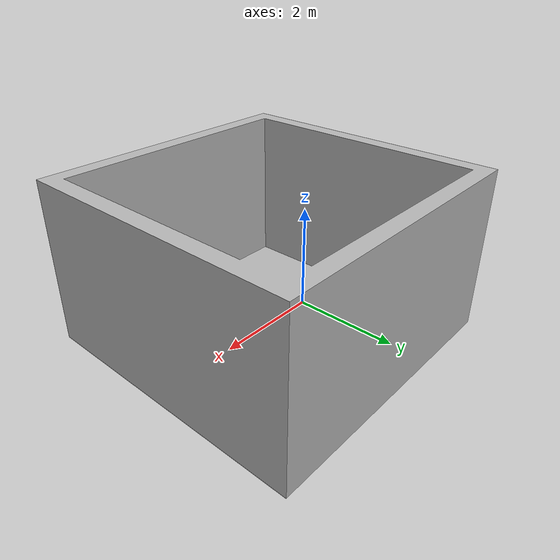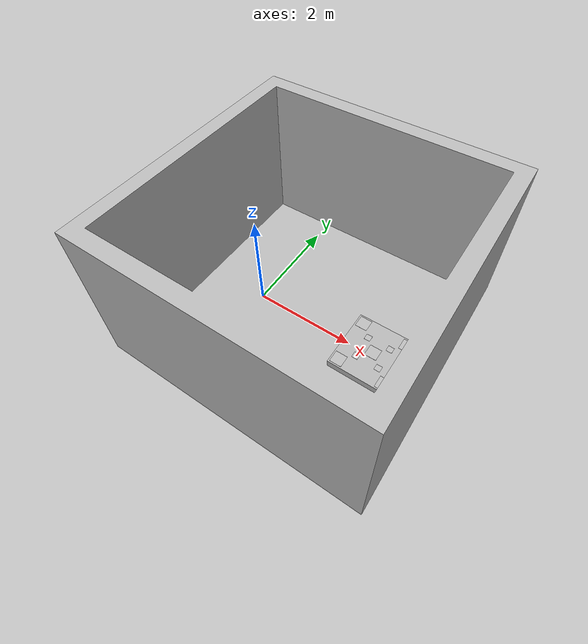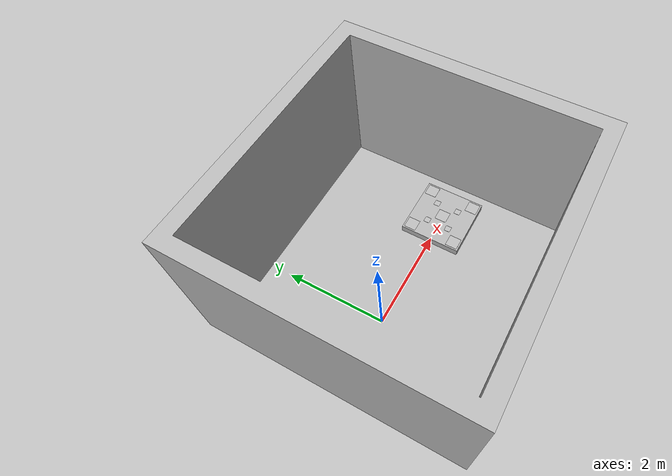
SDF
<?xml version="1.0"?>
<sdf version="1.5">
  <world name="default">
    <gui>
      <camera name="user_camera">
        <pose>5.96 3.11 13.02 0 1.06 -2.82</pose>
      </camera>
    </gui>
    <spherical_coordinates>
      <latitude_deg>48.878922</latitude_deg>
      <longitude_deg>2.367782</longitude_deg>
    </spherical_coordinates>
    <physics type="ode">
      <real_time_update_rate>1000</real_time_update_rate>
      <max_step_size>0.001</max_step_size>
      <real_time_factor>1.0</real_time_factor>
      <max_contacts>20</max_contacts>
      <gravity>0 0 -9.81</gravity>
      <magnetic_field>0.1062e-6 20.8038e-6 -43.2881e-6</magnetic_field>
      <ode>
        <solver>
          <type>world</type>
          <min_step_size>0.0001</min_step_size>
          <iters>50</iters>
          <precon_iters>0</precon_iters>
          <sor>1.4</sor>
          <use_dynamic_moi_rescaling>1</use_dynamic_moi_rescaling>
        </solver>
        <constraints>
          <cfm>0</cfm>
          <erp>0.2</erp>
          <contact_max_correcting_vel>100.0</contact_max_correcting_vel>
          <contact_surface_layer>0.001</contact_surface_layer>
        </constraints>
      </ode>
    </physics>
    <atmosphere type="adiabatic">
      <temperature>298.15</temperature>
      <pressure>101325</pressure>
      <temperature_gradient>-0.0065</temperature_gradient>
    </atmosphere>
    <plugin name="fwman" filename="libsphinx_fwman.so">
      <spawn_point name="default">
        <pose>0 0 0.3 0 0 0</pose>
      </spawn_point>
    </plugin>
    <include>
      <uri>model://room</uri>
      <pose>1 0.5 0 0 0 0</pose>
    </include>
    <include>
      <uri>model://sun</uri>
    </include>
    <light name='user_point_light_0' type='point'>
      <pose frame=''>-0.7 1.7 3 0 -0 0</pose>
      <diffuse>0.5 0.5 0.5 1</diffuse>
      <specular>0.1 0.1 0.1 1</specular>
      <attenuation>
        <range>200</range>
        <constant>0.5</constant>
        <linear>0.01</linear>
        <quadratic>0.001</quadratic>
      </attenuation>
      <cast_shadows>0</cast_shadows>
      <direction>0 0 -1</direction>
    </light>
<light name='user_point_light_1' type='point'>
      <pose frame=''>2.5 -1.5 3 0 -0 0</pose>
      <diffuse>0.5 0.5 0.5 1</diffuse>
      <specular>0.1 0.1 0.1 1</specular>
      <attenuation>
        <range>200</range>
        <constant>0.5</constant>
        <linear>0.01</linear>
        <quadratic>0.001</quadratic>
      </attenuation>
      <cast_shadows>0</cast_shadows>
      <direction>0 0 -1</direction>
    </light>
    <include>
      <uri>model://vision_landing_platform</uri>
      <pose> 2.5 0 0 0 0 0 </pose>
    </include>
  </world>
</sdf>

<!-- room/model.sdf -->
<sdf version="1.4">
  <model name="room">
    <static>true</static>
    <link name="link">
      <collision name="collision_wall 1">
	<pose> 0.1 -2.7 1.5 0 0 0 </pose>
        <geometry>
          <box>
	    <size>5.25 0.5 3.05 </size>
	  </box>
        </geometry>
      </collision>
      <collision name = "collision_wall 2">
        <pose> 0.1 2 1.5 0 0 0</pose>
        <geometry>
	  <box>
	    <size>5.25 0.5 3.05 </size>
	  </box>
        </geometry>
      </collision>
      <collision name="collision_wall 3">
        <pose> -2.35 -0.4 1.5 0 0 0</pose>
	<geometry>
	  <box>
	    <size> 0.5 5.25 3.05 </size>
	  </box>
	</geometry>
      </collision>
      <collision name="collision_wall 4">
	<pose> 2.5 -0.4 1.5 0 0 0</pose>
	<geometry>
	  <box>
	    <size> 0.5 5.25 3.05 </size>
	  </box>
	</geometry>
      </collision>
      <collision name="collision_floor">
	<pose>0.08 -0.35 0.02 0 0 0</pose>
	<geometry>
	  <box>
	    <size>5.27 5.2 0.05</size>
	  </box>
	</geometry>
      </collision>
      <collision name="collision_ceiling">
	<pose>0.08 -0.35 3.0 0 0 0</pose>
	<geometry>
	  <box>
	    <size>5.27 5.2 0.06</size>
	  </box>
	</geometry>
      </collision>
      <visual name="visual">
        <geometry>
          <mesh>
            <uri>model://room/meshes/room.dae</uri>
          </mesh>
        </geometry>
      </visual>
    </link>
  </model>
</sdf>

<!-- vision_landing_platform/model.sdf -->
<sdf version="1.4">
  <model name="vision_landing_platform">
    <static>1</static>
    <gravity>0</gravity>
    <link name="sensors_link">
    <inertial>
      <mass value="5000"/>
      <inertia ixx="0.4" ixy="0.0" ixz="0.0" iyy="0.4" iyz="0.0" izz="0.2"/>
    </inertial>
    <collision name="box_collision">
          <geometry>
            <box>
              <size>1.2 1.2 0.3</size>
            </box>
          </geometry>
      <surface>
        <friction>
          <ode>
            <mu>0.99</mu>
            <mu2>0.99</mu2>
          </ode>
        </friction>
      </surface>
        </collision>

   	<visual name="visual0">
          <geometry>
            <box>
              <size>0.235 0.235 0.001</size>
            </box>
          </geometry>
        <material>
          <script>
            <uri>model://vision_landing_platform/materials/scripts</uri>
            <uri>model://vision_landing_platform/materials/textures</uri>
            <name>aruco0</name>
          </script>
        </material>
        <pose frame=''>-0.4525 -0.4525 0.15 0 -0 0</pose>
        <cast_shadows>1</cast_shadows>
        <transparency>0.0</transparency>
        </visual>

   	<visual name="visual1">
          <geometry>
            <box>
              <size>0.235 0.235 0.001</size>
            </box>
          </geometry>
        <material>
          <script>
            <uri>model://vision_landing_platform/materials/scripts</uri>
            <uri>model://vision_landing_platform/materials/textures</uri>
            <name>aruco1</name>
          </script>
        </material>
        <pose frame=''>-0.4525 0.4525 0.15 0 -0 0</pose>
        <cast_shadows>1</cast_shadows>
        <transparency>0.0</transparency>
        </visual>

   	<visual name="visual2">
          <geometry>
            <box>
              <size>0.235 0.235 0.001</size>
            </box>
          </geometry>
        <material>
          <script>
            <uri>model://vision_landing_platform/materials/scripts</uri>
            <uri>model://vision_landing_platform/materials/textures</uri>
            <name>aruco2</name>
          </script>
        </material>
        <pose frame=''>0.4525 0.4525 0.15 0 -0 0</pose>
        <cast_shadows>1</cast_shadows>
        <transparency>0.0</transparency>
        </visual>

   	<visual name="visual3">
          <geometry>
            <box>
              <size>0.235 0.235 0.001</size>
            </box>
          </geometry>
        <material>
          <script>
            <uri>model://vision_landing_platform/materials/scripts</uri>
            <uri>model://vision_landing_platform/materials/textures</uri>
            <name>aruco3</name>
          </script>
        </material>
        <pose frame=''>0.4525 -0.4525 0.15 0 -0 0</pose>
        <cast_shadows>1</cast_shadows>
        <transparency>0.0</transparency>
        </visual>

   	<visual name="visual4">
          <geometry>
            <box>
              <size>0.235 0.235 0.001</size>
            </box>
          </geometry>
        <material>
          <script>
            <uri>model://vision_landing_platform/materials/scripts</uri>
            <uri>model://vision_landing_platform/materials/textures</uri>
            <name>aruco4</name>
          </script>
        </material>
        <pose frame=''>0 0 0.15 0 -0 0</pose>
        <cast_shadows>1</cast_shadows>
        <transparency>0.0</transparency>
        </visual>

   	<visual name="visual5">
          <geometry>
            <box>
              <size>0.117 0.117 0.001</size>
            </box>
          </geometry>
        <material>
          <script>
            <uri>model://vision_landing_platform/materials/scripts</uri>
            <uri>model://vision_landing_platform/materials/textures</uri>
            <name>aruco5</name>
          </script>
        </material>
        <pose frame=''>0.2262 0.2262 0.15 0 -0 0</pose>
        <cast_shadows>1</cast_shadows>
        <transparency>0.0</transparency>
        </visual>

   	<visual name="visual6">
          <geometry>
            <box>
              <size>0.117 0.117 0.001</size>
            </box>
          </geometry>
        <material>
          <script>
            <uri>model://vision_landing_platform/materials/scripts</uri>
            <uri>model://vision_landing_platform/materials/textures</uri>
            <name>aruco6</name>
          </script>
        </material>
        <pose frame=''>0.2262 -0.2262 0.15 0 -0 0</pose>
        <cast_shadows>1</cast_shadows>
        <transparency>0.0</transparency>
        </visual>

   	<visual name="visual7">
          <geometry>
            <box>
              <size>0.117 0.117 0.001</size>
            </box>
          </geometry>
        <material>
          <script>
            <uri>model://vision_landing_platform/materials/scripts</uri>
            <uri>model://vision_landing_platform/materials/textures</uri>
            <name>aruco7</name>
          </script>
        </material>
        <pose frame=''>-0.2262 -0.2262 0.15 0 -0 0</pose>
        <cast_shadows>1</cast_shadows>
        <transparency>0.0</transparency>
        </visual>

   	<visual name="visual8">
          <geometry>
            <box>
              <size>0.117 0.117 0.001</size>
            </box>
          </geometry>
        <material>
          <script>
            <uri>model://vision_landing_platform/materials/scripts</uri>
            <uri>model://vision_landing_platform/materials/textures</uri>
            <name>aruco8</name>
          </script>
        </material>
        <pose frame=''>-0.2262 0.2262 0.15 0 -0 0</pose>
        <cast_shadows>1</cast_shadows>
        <transparency>0.0</transparency>
        </visual>

        <visual name="visual">
          <geometry>
            <box>
              <size>1.2 1.2 0.295</size>
            </box>
          </geometry>
        <material>
          <ambient>0.3 0.3 0.3 1</ambient>
          <diffuse>0.7 0.7 0.7 1</diffuse>
          <specular>0.01 0.01 0.01 1</specular>
          <emissive>0.7 0.7 0.7 1</emissive>
          <shader type='vertex'>
            <normal_map>__default__</normal_map>
          </shader>
        </material>
        <pose frame=''>0 0 0 0 -0 0</pose>
        <cast_shadows>1</cast_shadows>
        <transparency>0.0</transparency>
        </visual>
    </link>
      <plugin name="animated_platform" filename="libanimated_platform.so"/>
  </model>
</sdf>
